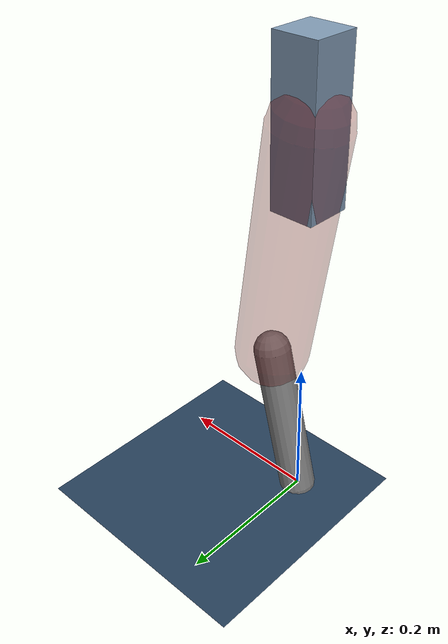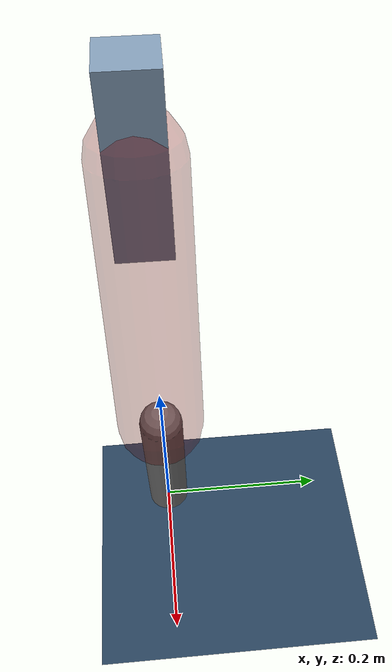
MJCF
<mujoco model="Hopper2D">
	<compiler inertiafromgeom="true" angle="radian" />
	<option timestep="0.001" integrator="implicit" cone="elliptic" solver="Newton" tolerance="1e-10" />

	<default>
		<geom contype="1" conaffinity="1" condim="3" friction="2 0.005 0.0001" solref="0.005 1" />
		<joint limited="true" damping="0.1" />
	</default>

	<asset>
		<texture name="skybox" type="skybox" builtin="gradient" rgb1=".4 .6 .8" rgb2="0 0 0" width="800" height="800" />
		<texture name="grid" type="2d" builtin="checker" rgb1=".1 .2 .3" rgb2=".2 .3 .4" width="300" height="300" mark="edge" markrgb=".2 .3 .4" />
		<material name="ground" texture="grid" texrepeat="1 1" texuniform="true" reflectance="0.1" />
		<material name="leg" rgba="0.5 0.6 0.7 1" />
	</asset>

	<worldbody>

		<geom name="floor" type="plane" size="5 5 0.25" material="ground" />

		<light directional="false" diffuse="0.8 0.8 0.8" specular="0.3 0.3 0.3" pos="0 0 2" dir="0 0 -1" />
		<light mode="targetbodycom" target="base" directional="false" diffuse="0.8 0.8 0.8" specular="0.3 0.3 0.3" pos="0 0 2" dir="0 0 -1" />

		<camera name="fixed" pos="0 -2 1" xyaxes="1 0 0 0 0 1" />
		<camera name="tracking" mode="trackcom" pos="0 -3 1" />

		<body name="root" pos="0 0 0.5333816226950046">
			<joint name="slide_x" type="slide" axis="1 0 0" range="-100 100" />
			<joint name="slide_z" type="slide" axis="0 0 1" range="0 10" />

			<body name="base" pos="0 0 0">
				<geom name="torso" type="box" size="0.03 0.03 0.1" mass="2.411" material="leg" />

				<body name="link1" pos="0 0 0" euler="0 1.4142800075135937 0">
					<joint type="hinge" axis="0 -1 0" pos="0 0 0" name="hinge1" limited="true" range="-3.14 3.14" stiffness="0" damping="0.1" />
					<geom name="thigh" type="capsule" fromto="0 0 0 0.3258989571411187 0 0" size="0.05" rgba="0.5 0 0 0.3" mass="1.0595170799951323" />

					<body name="link2" pos="0.3258989571411187 0 0" euler="0 0.3922784737157713 0">
						<joint type="hinge" axis="0 -1 0" pos="0 0 0" name="hinge2" limited="true" range="-3.14 3.14" stiffness="0" damping="0.1" />
						<geom name="shank" type="capsule" fromto="0 0 0 0.2174826655538858 0 0" size="0.025" mass="0.41558613244310866" />

					</body>
				</body>
			</body>
		</body>
	</worldbody>

	<actuator>
		<motor name="torque1" joint="hinge1" ctrlrange="-102.10439394665966 102.10439394665966" ctrllimited="true" gear="1" />
		<motor name="torque2" joint="hinge2" ctrlrange="-103.35694584879009 103.35694584879009" ctrllimited="true" gear="1" />
	</actuator>
</mujoco>
